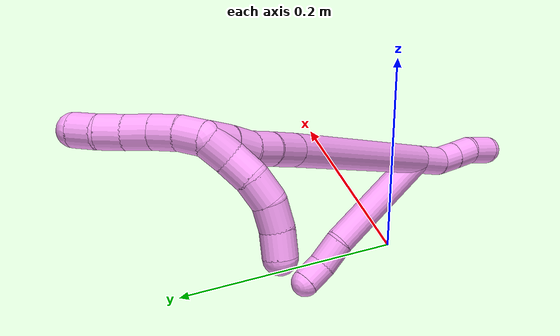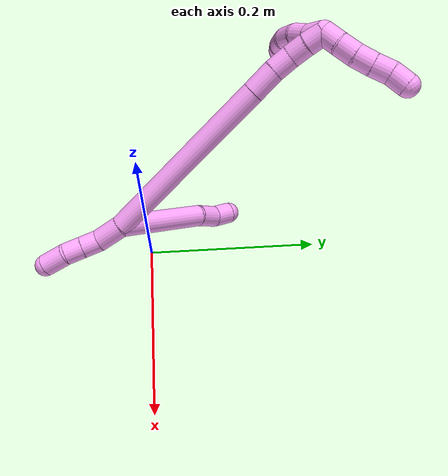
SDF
<sdf version="1.7">
 <world name="default">
  <model name="4">
   <static>0</static>
   <link name="4">
    <collision name="collision-cylinder-e_1_2_8">
     <pose>0.022114 -0.019424 -0.042139 2.70968 0.444755 1.60104</pose>
     <geometry><cylinder><radius>0.0125</radius><length>0.102801</length></cylinder></geometry>
     <surface>
      <friction><ode><mu>1.16</mu><mu2>1.16</mu2><slip1>0</slip1><slip2>0</slip2></ode></friction>
      <contact><ode><kp>1e+06</kp><kd>1</kd><max_vel>0</max_vel><min_depth>0.001</min_depth></ode></contact>
     </surface>
    </collision>
    <visual name="visual-cylinder-e_1_2_8">
     <pose>0.022114 -0.019424 -0.042139 2.70968 0.444755 1.60104</pose>
     <geometry><cylinder><radius>0.0125</radius><length>0.102801</length></cylinder></geometry>
     <material><ambient>1 0.65098 0.996078 1</ambient></material>
    </visual>
    <collision name="collision-cylinder-e_2_8_9">
     <pose>0.050842 -0.045771 -0.092906 2.46536 0.53883 1.33143</pose>
     <geometry><cylinder><radius>0.0125</radius><length>0.025776</length></cylinder></geometry>
     <surface>
      <friction><ode><mu>1.16</mu><mu2>1.16</mu2><slip1>0</slip1><slip2>0</slip2></ode></friction>
      <contact><ode><kp>1e+06</kp><kd>1</kd><max_vel>0</max_vel><min_depth>0.001</min_depth></ode></contact>
     </surface>
    </collision>
    <visual name="visual-cylinder-e_2_8_9">
     <pose>0.050842 -0.045771 -0.092906 2.46536 0.53883 1.33143</pose>
     <geometry><cylinder><radius>0.0125</radius><length>0.025776</length></cylinder></geometry>
     <material><ambient>1 0.65098 0.996078 1</ambient></material>
    </visual>
    <collision name="collision-cylinder-e_3_9_6">
     <pose>0.061249 -0.05618 -0.110924 2.78609 0.362025 1.58936</pose>
     <geometry><cylinder><radius>0.0125</radius><length>0.021423</length></cylinder></geometry>
     <surface>
      <friction><ode><mu>1.16</mu><mu2>1.16</mu2><slip1>0</slip1><slip2>0</slip2></ode></friction>
      <contact><ode><kp>1e+06</kp><kd>1</kd><max_vel>0</max_vel><min_depth>0.001</min_depth></ode></contact>
     </surface>
    </collision>
    <visual name="visual-cylinder-e_3_9_6">
     <pose>0.061249 -0.05618 -0.110924 2.78609 0.362025 1.58936</pose>
     <geometry><cylinder><radius>0.0125</radius><length>0.021423</length></cylinder></geometry>
     <material><ambient>1 0.65098 0.996078 1</ambient></material>
    </visual>
    <collision name="collision-cylinder-e_1_2_10">
     <pose>-1.8e-05 -0.006381 0.014503 0.41448 -0.001126 -0.000237</pose>
     <geometry><cylinder><radius>0.0125</radius><length>0.031688</length></cylinder></geometry>
     <surface>
      <friction><ode><mu>1.16</mu><mu2>1.16</mu2><slip1>0</slip1><slip2>0</slip2></ode></friction>
      <contact><ode><kp>1e+06</kp><kd>1</kd><max_vel>0</max_vel><min_depth>0.001</min_depth></ode></contact>
     </surface>
    </collision>
    <visual name="visual-cylinder-e_1_2_10">
     <pose>-1.8e-05 -0.006381 0.014503 0.41448 -0.001126 -0.000237</pose>
     <geometry><cylinder><radius>0.0125</radius><length>0.031688</length></cylinder></geometry>
     <material><ambient>1 0.65098 0.996078 1</ambient></material>
    </visual>
    <collision name="collision-cylinder-e_2_10_11">
     <pose>-0.002171 -0.014175 0.03874 0.144246 -0.213743 -0.015501</pose>
     <geometry><cylinder><radius>0.0125</radius><length>0.020132</length></cylinder></geometry>
     <surface>
      <friction><ode><mu>1.16</mu><mu2>1.16</mu2><slip1>0</slip1><slip2>0</slip2></ode></friction>
      <contact><ode><kp>1e+06</kp><kd>1</kd><max_vel>0</max_vel><min_depth>0.001</min_depth></ode></contact>
     </surface>
    </collision>
    <visual name="visual-cylinder-e_2_10_11">
     <pose>-0.002171 -0.014175 0.03874 0.144246 -0.213743 -0.015501</pose>
     <geometry><cylinder><radius>0.0125</radius><length>0.020132</length></cylinder></geometry>
     <material><ambient>1 0.65098 0.996078 1</ambient></material>
    </visual>
    <collision name="collision-cylinder-e_3_11_12">
     <pose>-0.00652 -0.01682 0.058597 0.12101 -0.213843 -0.013004</pose>
     <geometry><cylinder><radius>0.0125</radius><length>0.02087</length></cylinder></geometry>
     <surface>
      <friction><ode><mu>1.16</mu><mu2>1.16</mu2><slip1>0</slip1><slip2>0</slip2></ode></friction>
      <contact><ode><kp>1e+06</kp><kd>1</kd><max_vel>0</max_vel><min_depth>0.001</min_depth></ode></contact>
     </surface>
    </collision>
    <visual name="visual-cylinder-e_3_11_12">
     <pose>-0.00652 -0.01682 0.058597 0.12101 -0.213843 -0.013004</pose>
     <geometry><cylinder><radius>0.0125</radius><length>0.02087</length></cylinder></geometry>
     <material><ambient>1 0.65098 0.996078 1</ambient></material>
    </visual>
    <collision name="collision-cylinder-e_4_12_5">
     <pose>-0.009771 -0.02281 0.081477 0.357008 -0.075941 -0.013708</pose>
     <geometry><cylinder><radius>0.0125</radius><length>0.02731</length></cylinder></geometry>
     <surface>
      <friction><ode><mu>1.16</mu><mu2>1.16</mu2><slip1>0</slip1><slip2>0</slip2></ode></friction>
      <contact><ode><kp>1e+06</kp><kd>1</kd><max_vel>0</max_vel><min_depth>0.001</min_depth></ode></contact>
     </surface>
    </collision>
    <visual name="visual-cylinder-e_4_12_5">
     <pose>-0.009771 -0.02281 0.081477 0.357008 -0.075941 -0.013708</pose>
     <geometry><cylinder><radius>0.0125</radius><length>0.02731</length></cylinder></geometry>
     <material><ambient>1 0.65098 0.996078 1</ambient></material>
    </visual>
    <collision name="collision-cylinder-e_1_2_13">
     <pose>-0.019712 0.036778 -0.094648 -2.77097 -0.191746 0.947996</pose>
     <geometry><cylinder><radius>0.0125</radius><length>0.206875</length></cylinder></geometry>
     <surface>
      <friction><ode><mu>1.16</mu><mu2>1.16</mu2><slip1>0</slip1><slip2>0</slip2></ode></friction>
      <contact><ode><kp>1e+06</kp><kd>1</kd><max_vel>0</max_vel><min_depth>0.001</min_depth></ode></contact>
     </surface>
    </collision>
    <visual name="visual-cylinder-e_1_2_13">
     <pose>-0.019712 0.036778 -0.094648 -2.77097 -0.191746 0.947996</pose>
     <geometry><cylinder><radius>0.0125</radius><length>0.206875</length></cylinder></geometry>
     <material><ambient>1 0.65098 0.996078 1</ambient></material>
    </visual>
    <collision name="collision-cylinder-e_2_13_14">
     <pose>-0.042526 0.078626 -0.2033 -2.79421 -0.205239 1.0615</pose>
     <geometry><cylinder><radius>0.0125</radius><length>0.030427</length></cylinder></geometry>
     <surface>
      <friction><ode><mu>1.16</mu><mu2>1.16</mu2><slip1>0</slip1><slip2>0</slip2></ode></friction>
      <contact><ode><kp>1e+06</kp><kd>1</kd><max_vel>0</max_vel><min_depth>0.001</min_depth></ode></contact>
     </surface>
    </collision>
    <visual name="visual-cylinder-e_2_13_14">
     <pose>-0.042526 0.078626 -0.2033 -2.79421 -0.205239 1.0615</pose>
     <geometry><cylinder><radius>0.0125</radius><length>0.030427</length></cylinder></geometry>
     <material><ambient>1 0.65098 0.996078 1</ambient></material>
    </visual>
    <collision name="collision-cylinder-e_3_14_15">
     <pose>-0.046673 0.087563 -0.227788 -2.78826 -0.093468 0.512415</pose>
     <geometry><cylinder><radius>0.0125</radius><length>0.022446</length></cylinder></geometry>
     <surface>
      <friction><ode><mu>1.16</mu><mu2>1.16</mu2><slip1>0</slip1><slip2>0</slip2></ode></friction>
      <contact><ode><kp>1e+06</kp><kd>1</kd><max_vel>0</max_vel><min_depth>0.001</min_depth></ode></contact>
     </surface>
    </collision>
    <visual name="visual-cylinder-e_3_14_15">
     <pose>-0.046673 0.087563 -0.227788 -2.78826 -0.093468 0.512415</pose>
     <geometry><cylinder><radius>0.0125</radius><length>0.022446</length></cylinder></geometry>
     <material><ambient>1 0.65098 0.996078 1</ambient></material>
    </visual>
    <collision name="collision-cylinder-e_4_15_16">
     <pose>-0.048086 0.096727 -0.246849 -2.58829 -0.036196 0.12732</pose>
     <geometry><cylinder><radius>0.0125</radius><length>0.020176</length></cylinder></geometry>
     <surface>
      <friction><ode><mu>1.16</mu><mu2>1.16</mu2><slip1>0</slip1><slip2>0</slip2></ode></friction>
      <contact><ode><kp>1e+06</kp><kd>1</kd><max_vel>0</max_vel><min_depth>0.001</min_depth></ode></contact>
     </surface>
    </collision>
    <visual name="visual-cylinder-e_4_15_16">
     <pose>-0.048086 0.096727 -0.246849 -2.58829 -0.036196 0.12732</pose>
     <geometry><cylinder><radius>0.0125</radius><length>0.020176</length></cylinder></geometry>
     <material><ambient>1 0.65098 0.996078 1</ambient></material>
    </visual>
    <collision name="collision-cylinder-e_5_16_1">
     <pose>-0.04843 0.10673 -0.264293 -2.6537 0.002051 -0.008239</pose>
     <geometry><cylinder><radius>0.0125</radius><length>0.020076</length></cylinder></geometry>
     <surface>
      <friction><ode><mu>1.16</mu><mu2>1.16</mu2><slip1>0</slip1><slip2>0</slip2></ode></friction>
      <contact><ode><kp>1e+06</kp><kd>1</kd><max_vel>0</max_vel><min_depth>0.001</min_depth></ode></contact>
     </surface>
    </collision>
    <visual name="visual-cylinder-e_5_16_1">
     <pose>-0.04843 0.10673 -0.264293 -2.6537 0.002051 -0.008239</pose>
     <geometry><cylinder><radius>0.0125</radius><length>0.020076</length></cylinder></geometry>
     <material><ambient>1 0.65098 0.996078 1</ambient></material>
    </visual>
    <collision name="collision-cylinder-e_1_1_17">
     <pose>-0.039491 0.115545 -0.275045 -2.001 1.10159 -1.5275</pose>
     <geometry><cylinder><radius>0.0125</radius><length>0.02</length></cylinder></geometry>
     <surface>
      <friction><ode><mu>1.16</mu><mu2>1.16</mu2><slip1>0</slip1><slip2>0</slip2></ode></friction>
      <contact><ode><kp>1e+06</kp><kd>1</kd><max_vel>0</max_vel><min_depth>0.001</min_depth></ode></contact>
     </surface>
    </collision>
    <visual name="visual-cylinder-e_1_1_17">
     <pose>-0.039491 0.115545 -0.275045 -2.001 1.10159 -1.5275</pose>
     <geometry><cylinder><radius>0.0125</radius><length>0.02</length></cylinder></geometry>
     <material><ambient>1 0.65098 0.996078 1</ambient></material>
    </visual>
    <collision name="collision-cylinder-e_2_17_18">
     <pose>-0.021408 0.122517 -0.279732 -2.34559 1.15881 -1.99934</pose>
     <geometry><cylinder><radius>0.0125</radius><length>0.02</length></cylinder></geometry>
     <surface>
      <friction><ode><mu>1.16</mu><mu2>1.16</mu2><slip1>0</slip1><slip2>0</slip2></ode></friction>
      <contact><ode><kp>1e+06</kp><kd>1</kd><max_vel>0</max_vel><min_depth>0.001</min_depth></ode></contact>
     </surface>
    </collision>
    <visual name="visual-cylinder-e_2_17_18">
     <pose>-0.021408 0.122517 -0.279732 -2.34559 1.15881 -1.99934</pose>
     <geometry><cylinder><radius>0.0125</radius><length>0.02</length></cylinder></geometry>
     <material><ambient>1 0.65098 0.996078 1</ambient></material>
    </visual>
    <collision name="collision-cylinder-e_3_18_19">
     <pose>-0.003449 0.128072 -0.286455 -2.53959 1.07495 -2.1812</pose>
     <geometry><cylinder><radius>0.0125</radius><length>0.02</length></cylinder></geometry>
     <surface>
      <friction><ode><mu>1.16</mu><mu2>1.16</mu2><slip1>0</slip1><slip2>0</slip2></ode></friction>
      <contact><ode><kp>1e+06</kp><kd>1</kd><max_vel>0</max_vel><min_depth>0.001</min_depth></ode></contact>
     </surface>
    </collision>
    <visual name="visual-cylinder-e_3_18_19">
     <pose>-0.003449 0.128072 -0.286455 -2.53959 1.07495 -2.1812</pose>
     <geometry><cylinder><radius>0.0125</radius><length>0.02</length></cylinder></geometry>
     <material><ambient>1 0.65098 0.996078 1</ambient></material>
    </visual>
    <collision name="collision-cylinder-e_4_19_20">
     <pose>0.013816 0.133874 -0.294692 -2.51759 1.01013 -2.08541</pose>
     <geometry><cylinder><radius>0.0125</radius><length>0.02</length></cylinder></geometry>
     <surface>
      <friction><ode><mu>1.16</mu><mu2>1.16</mu2><slip1>0</slip1><slip2>0</slip2></ode></friction>
      <contact><ode><kp>1e+06</kp><kd>1</kd><max_vel>0</max_vel><min_depth>0.001</min_depth></ode></contact>
     </surface>
    </collision>
    <visual name="visual-cylinder-e_4_19_20">
     <pose>0.013816 0.133874 -0.294692 -2.51759 1.01013 -2.08541</pose>
     <geometry><cylinder><radius>0.0125</radius><length>0.02</length></cylinder></geometry>
     <material><ambient>1 0.65098 0.996078 1</ambient></material>
    </visual>
    <collision name="collision-cylinder-e_5_20_4">
     <pose>0.03156 0.139989 -0.301225 -2.20595 1.18776 -1.85679</pose>
     <geometry><cylinder><radius>0.0125</radius><length>0.02</length></cylinder></geometry>
     <surface>
      <friction><ode><mu>1.16</mu><mu2>1.16</mu2><slip1>0</slip1><slip2>0</slip2></ode></friction>
      <contact><ode><kp>1e+06</kp><kd>1</kd><max_vel>0</max_vel><min_depth>0.001</min_depth></ode></contact>
     </surface>
    </collision>
    <visual name="visual-cylinder-e_5_20_4">
     <pose>0.03156 0.139989 -0.301225 -2.20595 1.18776 -1.85679</pose>
     <geometry><cylinder><radius>0.0125</radius><length>0.02</length></cylinder></geometry>
     <material><ambient>1 0.65098 0.996078 1</ambient></material>
    </visual>
    <collision name="collision-cylinder-e_1_1_21">
     <pose>-0.051478 0.102807 -0.269142 1.13502 -0.31182 -0.199734</pose>
     <geometry><cylinder><radius>0.0125</radius><length>0.02</length></cylinder></geometry>
     <surface>
      <friction><ode><mu>1.16</mu><mu2>1.16</mu2><slip1>0</slip1><slip2>0</slip2></ode></friction>
      <contact><ode><kp>1e+06</kp><kd>1</kd><max_vel>0</max_vel><min_depth>0.001</min_depth></ode></contact>
     </surface>
    </collision>
    <visual name="visual-cylinder-e_1_1_21">
     <pose>-0.051478 0.102807 -0.269142 1.13502 -0.31182 -0.199734</pose>
     <geometry><cylinder><radius>0.0125</radius><length>0.02</length></cylinder></geometry>
     <material><ambient>1 0.65098 0.996078 1</ambient></material>
    </visual>
    <collision name="collision-cylinder-e_2_21_22">
     <pose>-0.059083 0.085495 -0.263125 1.34454 -0.470911 -0.377365</pose>
     <geometry><cylinder><radius>0.0125</radius><length>0.02</length></cylinder></geometry>
     <surface>
      <friction><ode><mu>1.16</mu><mu2>1.16</mu2><slip1>0</slip1><slip2>0</slip2></ode></friction>
      <contact><ode><kp>1e+06</kp><kd>1</kd><max_vel>0</max_vel><min_depth>0.001</min_depth></ode></contact>
     </surface>
    </collision>
    <visual name="visual-cylinder-e_2_21_22">
     <pose>-0.059083 0.085495 -0.263125 1.34454 -0.470911 -0.377365</pose>
     <geometry><cylinder><radius>0.0125</radius><length>0.02</length></cylinder></geometry>
     <material><ambient>1 0.65098 0.996078 1</ambient></material>
    </visual>
    <collision name="collision-cylinder-e_3_22_23">
     <pose>-0.065387 0.067176 -0.259111 1.36458 -0.177707 -0.144508</pose>
     <geometry><cylinder><radius>0.0125</radius><length>0.02</length></cylinder></geometry>
     <surface>
      <friction><ode><mu>1.16</mu><mu2>1.16</mu2><slip1>0</slip1><slip2>0</slip2></ode></friction>
      <contact><ode><kp>1e+06</kp><kd>1</kd><max_vel>0</max_vel><min_depth>0.001</min_depth></ode></contact>
     </surface>
    </collision>
    <visual name="visual-cylinder-e_3_22_23">
     <pose>-0.065387 0.067176 -0.259111 1.36458 -0.177707 -0.144508</pose>
     <geometry><cylinder><radius>0.0125</radius><length>0.02</length></cylinder></geometry>
     <material><ambient>1 0.65098 0.996078 1</ambient></material>
    </visual>
    <collision name="collision-cylinder-e_4_23_24">
     <pose>-0.066074 0.047602 -0.256937 1.55491 0.108354 0.10665</pose>
     <geometry><cylinder><radius>0.0125</radius><length>0.02</length></cylinder></geometry>
     <surface>
      <friction><ode><mu>1.16</mu><mu2>1.16</mu2><slip1>0</slip1><slip2>0</slip2></ode></friction>
      <contact><ode><kp>1e+06</kp><kd>1</kd><max_vel>0</max_vel><min_depth>0.001</min_depth></ode></contact>
     </surface>
    </collision>
    <visual name="visual-cylinder-e_4_23_24">
     <pose>-0.066074 0.047602 -0.256937 1.55491 0.108354 0.10665</pose>
     <geometry><cylinder><radius>0.0125</radius><length>0.02</length></cylinder></geometry>
     <material><ambient>1 0.65098 0.996078 1</ambient></material>
    </visual>
    <collision name="collision-cylinder-e_5_24_3">
     <pose>-0.063478 0.027941 -0.258569 1.7528 0.152043 0.182424</pose>
     <geometry><cylinder><radius>0.0125</radius><length>0.02</length></cylinder></geometry>
     <surface>
      <friction><ode><mu>1.16</mu><mu2>1.16</mu2><slip1>0</slip1><slip2>0</slip2></ode></friction>
      <contact><ode><kp>1e+06</kp><kd>1</kd><max_vel>0</max_vel><min_depth>0.001</min_depth></ode></contact>
     </surface>
    </collision>
    <visual name="visual-cylinder-e_5_24_3">
     <pose>-0.063478 0.027941 -0.258569 1.7528 0.152043 0.182424</pose>
     <geometry><cylinder><radius>0.0125</radius><length>0.02</length></cylinder></geometry>
     <material><ambient>1 0.65098 0.996078 1</ambient></material>
    </visual>
    <collision name="collision-sphere-3">
     <pose>-0.061963 0.018219 -0.260358 0 -0 0</pose>
     <geometry><sphere><radius>0.0125</radius></sphere></geometry>
     <surface>
      <friction><ode><mu>1.16</mu><mu2>1.16</mu2><slip1>0</slip1><slip2>0</slip2></ode></friction>
      <contact><ode><kp>1e+06</kp><kd>1</kd><max_vel>0</max_vel><min_depth>0.001</min_depth></ode></contact>
     </surface>
    </collision>
    <visual name="visual-sphere-3">
     <pose>-0.061963 0.018219 -0.260358 0 -0 0</pose>
     <geometry><sphere><radius>0.0125</radius></sphere></geometry>
     <material><ambient>1 0.65098 0.996078 1</ambient></material>
    </visual>
    <collision name="collision-sphere-24">
     <pose>-0.064992 0.037662 -0.25678 0 -0 0</pose>
     <geometry><sphere><radius>0.0125</radius></sphere></geometry>
     <surface>
      <friction><ode><mu>1.16</mu><mu2>1.16</mu2><slip1>0</slip1><slip2>0</slip2></ode></friction>
      <contact><ode><kp>1e+06</kp><kd>1</kd><max_vel>0</max_vel><min_depth>0.001</min_depth></ode></contact>
     </surface>
    </collision>
    <visual name="visual-sphere-24">
     <pose>-0.064992 0.037662 -0.25678 0 -0 0</pose>
     <geometry><sphere><radius>0.0125</radius></sphere></geometry>
     <material><ambient>1 0.65098 0.996078 1</ambient></material>
    </visual>
    <collision name="collision-sphere-23">
     <pose>-0.067155 0.057542 -0.257095 0 -0 0</pose>
     <geometry><sphere><radius>0.0125</radius></sphere></geometry>
     <surface>
      <friction><ode><mu>1.16</mu><mu2>1.16</mu2><slip1>0</slip1><slip2>0</slip2></ode></friction>
      <contact><ode><kp>1e+06</kp><kd>1</kd><max_vel>0</max_vel><min_depth>0.001</min_depth></ode></contact>
     </surface>
    </collision>
    <visual name="visual-sphere-23">
     <pose>-0.067155 0.057542 -0.257095 0 -0 0</pose>
     <geometry><sphere><radius>0.0125</radius></sphere></geometry>
     <material><ambient>1 0.65098 0.996078 1</ambient></material>
    </visual>
    <collision name="collision-sphere-22">
     <pose>-0.06362 0.07681 -0.261126 0 -0 0</pose>
     <geometry><sphere><radius>0.0125</radius></sphere></geometry>
     <surface>
      <friction><ode><mu>1.16</mu><mu2>1.16</mu2><slip1>0</slip1><slip2>0</slip2></ode></friction>
      <contact><ode><kp>1e+06</kp><kd>1</kd><max_vel>0</max_vel><min_depth>0.001</min_depth></ode></contact>
     </surface>
    </collision>
    <visual name="visual-sphere-22">
     <pose>-0.06362 0.07681 -0.261126 0 -0 0</pose>
     <geometry><sphere><radius>0.0125</radius></sphere></geometry>
     <material><ambient>1 0.65098 0.996078 1</ambient></material>
    </visual>
    <collision name="collision-sphere-21">
     <pose>-0.054546 0.094179 -0.265124 0 -0 0</pose>
     <geometry><sphere><radius>0.0125</radius></sphere></geometry>
     <surface>
      <friction><ode><mu>1.16</mu><mu2>1.16</mu2><slip1>0</slip1><slip2>0</slip2></ode></friction>
      <contact><ode><kp>1e+06</kp><kd>1</kd><max_vel>0</max_vel><min_depth>0.001</min_depth></ode></contact>
     </surface>
    </collision>
    <visual name="visual-sphere-21">
     <pose>-0.054546 0.094179 -0.265124 0 -0 0</pose>
     <geometry><sphere><radius>0.0125</radius></sphere></geometry>
     <material><ambient>1 0.65098 0.996078 1</ambient></material>
    </visual>
    <collision name="collision-sphere-4">
     <pose>0.040835 0.142998 -0.303442 0 -0 0</pose>
     <geometry><sphere><radius>0.0125</radius></sphere></geometry>
     <surface>
      <friction><ode><mu>1.16</mu><mu2>1.16</mu2><slip1>0</slip1><slip2>0</slip2></ode></friction>
      <contact><ode><kp>1e+06</kp><kd>1</kd><max_vel>0</max_vel><min_depth>0.001</min_depth></ode></contact>
     </surface>
    </collision>
    <visual name="visual-sphere-4">
     <pose>0.040835 0.142998 -0.303442 0 -0 0</pose>
     <geometry><sphere><radius>0.0125</radius></sphere></geometry>
     <material><ambient>1 0.65098 0.996078 1</ambient></material>
    </visual>
    <collision name="collision-sphere-20">
     <pose>0.022285 0.13698 -0.299007 0 -0 0</pose>
     <geometry><sphere><radius>0.0125</radius></sphere></geometry>
     <surface>
      <friction><ode><mu>1.16</mu><mu2>1.16</mu2><slip1>0</slip1><slip2>0</slip2></ode></friction>
      <contact><ode><kp>1e+06</kp><kd>1</kd><max_vel>0</max_vel><min_depth>0.001</min_depth></ode></contact>
     </surface>
    </collision>
    <visual name="visual-sphere-20">
     <pose>0.022285 0.13698 -0.299007 0 -0 0</pose>
     <geometry><sphere><radius>0.0125</radius></sphere></geometry>
     <material><ambient>1 0.65098 0.996078 1</ambient></material>
    </visual>
    <collision name="collision-sphere-11">
     <pose>-0.004306 -0.015589 0.048474 0 -0 0</pose>
     <geometry><sphere><radius>0.0125</radius></sphere></geometry>
     <surface>
      <friction><ode><mu>1.16</mu><mu2>1.16</mu2><slip1>0</slip1><slip2>0</slip2></ode></friction>
      <contact><ode><kp>1e+06</kp><kd>1</kd><max_vel>0</max_vel><min_depth>0.001</min_depth></ode></contact>
     </surface>
    </collision>
    <visual name="visual-sphere-11">
     <pose>-0.004306 -0.015589 0.048474 0 -0 0</pose>
     <geometry><sphere><radius>0.0125</radius></sphere></geometry>
     <material><ambient>1 0.65098 0.996078 1</ambient></material>
    </visual>
    <collision name="collision-sphere-10">
     <pose>-3.6e-05 -0.012761 0.029005 0 -0 0</pose>
     <geometry><sphere><radius>0.0125</radius></sphere></geometry>
     <surface>
      <friction><ode><mu>1.16</mu><mu2>1.16</mu2><slip1>0</slip1><slip2>0</slip2></ode></friction>
      <contact><ode><kp>1e+06</kp><kd>1</kd><max_vel>0</max_vel><min_depth>0.001</min_depth></ode></contact>
     </surface>
    </collision>
    <visual name="visual-sphere-10">
     <pose>-3.6e-05 -0.012761 0.029005 0 -0 0</pose>
     <geometry><sphere><radius>0.0125</radius></sphere></geometry>
     <material><ambient>1 0.65098 0.996078 1</ambient></material>
    </visual>
    <collision name="collision-sphere-6">
     <pose>0.065043 -0.059667 -0.120315 0 -0 0</pose>
     <geometry><sphere><radius>0.0125</radius></sphere></geometry>
     <surface>
      <friction><ode><mu>1.16</mu><mu2>1.16</mu2><slip1>0</slip1><slip2>0</slip2></ode></friction>
      <contact><ode><kp>1e+06</kp><kd>1</kd><max_vel>0</max_vel><min_depth>0.001</min_depth></ode></contact>
     </surface>
    </collision>
    <visual name="visual-sphere-6">
     <pose>0.065043 -0.059667 -0.120315 0 -0 0</pose>
     <geometry><sphere><radius>0.0125</radius></sphere></geometry>
     <material><ambient>1 0.65098 0.996078 1</ambient></material>
    </visual>
    <collision name="collision-sphere-9">
     <pose>0.057455 -0.052694 -0.101533 0 -0 0</pose>
     <geometry><sphere><radius>0.0125</radius></sphere></geometry>
     <surface>
      <friction><ode><mu>1.16</mu><mu2>1.16</mu2><slip1>0</slip1><slip2>0</slip2></ode></friction>
      <contact><ode><kp>1e+06</kp><kd>1</kd><max_vel>0</max_vel><min_depth>0.001</min_depth></ode></contact>
     </surface>
    </collision>
    <visual name="visual-sphere-9">
     <pose>0.057455 -0.052694 -0.101533 0 -0 0</pose>
     <geometry><sphere><radius>0.0125</radius></sphere></geometry>
     <material><ambient>1 0.65098 0.996078 1</ambient></material>
    </visual>
    <collision name="collision-sphere-2">
     <geometry><sphere><radius>0.0125</radius></sphere></geometry>
     <surface>
      <friction><ode><mu>1.16</mu><mu2>1.16</mu2><slip1>0</slip1><slip2>0</slip2></ode></friction>
      <contact><ode><kp>1e+06</kp><kd>1</kd><max_vel>0</max_vel><min_depth>0.001</min_depth></ode></contact>
     </surface>
    </collision>
    <visual name="visual-sphere-2">
     <geometry><sphere><radius>0.0125</radius></sphere></geometry>
     <material><ambient>1 0.65098 0.996078 1</ambient></material>
    </visual>
    <collision name="collision-sphere-19">
     <pose>0.005347 0.130767 -0.290376 0 -0 0</pose>
     <geometry><sphere><radius>0.0125</radius></sphere></geometry>
     <surface>
      <friction><ode><mu>1.16</mu><mu2>1.16</mu2><slip1>0</slip1><slip2>0</slip2></ode></friction>
      <contact><ode><kp>1e+06</kp><kd>1</kd><max_vel>0</max_vel><min_depth>0.001</min_depth></ode></contact>
     </surface>
    </collision>
    <visual name="visual-sphere-19">
     <pose>0.005347 0.130767 -0.290376 0 -0 0</pose>
     <geometry><sphere><radius>0.0125</radius></sphere></geometry>
     <material><ambient>1 0.65098 0.996078 1</ambient></material>
    </visual>
    <collision name="collision-sphere-8">
     <pose>0.044229 -0.038847 -0.084278 0 -0 0</pose>
     <geometry><sphere><radius>0.0125</radius></sphere></geometry>
     <surface>
      <friction><ode><mu>1.16</mu><mu2>1.16</mu2><slip1>0</slip1><slip2>0</slip2></ode></friction>
      <contact><ode><kp>1e+06</kp><kd>1</kd><max_vel>0</max_vel><min_depth>0.001</min_depth></ode></contact>
     </surface>
    </collision>
    <visual name="visual-sphere-8">
     <pose>0.044229 -0.038847 -0.084278 0 -0 0</pose>
     <geometry><sphere><radius>0.0125</radius></sphere></geometry>
     <material><ambient>1 0.65098 0.996078 1</ambient></material>
    </visual>
    <collision name="collision-sphere-12">
     <pose>-0.008735 -0.018051 0.06872 0 -0 0</pose>
     <geometry><sphere><radius>0.0125</radius></sphere></geometry>
     <surface>
      <friction><ode><mu>1.16</mu><mu2>1.16</mu2><slip1>0</slip1><slip2>0</slip2></ode></friction>
      <contact><ode><kp>1e+06</kp><kd>1</kd><max_vel>0</max_vel><min_depth>0.001</min_depth></ode></contact>
     </surface>
    </collision>
    <visual name="visual-sphere-12">
     <pose>-0.008735 -0.018051 0.06872 0 -0 0</pose>
     <geometry><sphere><radius>0.0125</radius></sphere></geometry>
     <material><ambient>1 0.65098 0.996078 1</ambient></material>
    </visual>
    <collision name="collision-sphere-5">
     <pose>-0.010807 -0.027568 0.094234 0 -0 0</pose>
     <geometry><sphere><radius>0.0125</radius></sphere></geometry>
     <surface>
      <friction><ode><mu>1.16</mu><mu2>1.16</mu2><slip1>0</slip1><slip2>0</slip2></ode></friction>
      <contact><ode><kp>1e+06</kp><kd>1</kd><max_vel>0</max_vel><min_depth>0.001</min_depth></ode></contact>
     </surface>
    </collision>
    <visual name="visual-sphere-5">
     <pose>-0.010807 -0.027568 0.094234 0 -0 0</pose>
     <geometry><sphere><radius>0.0125</radius></sphere></geometry>
     <material><ambient>1 0.65098 0.996078 1</ambient></material>
    </visual>
    <collision name="collision-sphere-13">
     <pose>-0.039425 0.073555 -0.189295 0 -0 0</pose>
     <geometry><sphere><radius>0.0125</radius></sphere></geometry>
     <surface>
      <friction><ode><mu>1.16</mu><mu2>1.16</mu2><slip1>0</slip1><slip2>0</slip2></ode></friction>
      <contact><ode><kp>1e+06</kp><kd>1</kd><max_vel>0</max_vel><min_depth>0.001</min_depth></ode></contact>
     </surface>
    </collision>
    <visual name="visual-sphere-13">
     <pose>-0.039425 0.073555 -0.189295 0 -0 0</pose>
     <geometry><sphere><radius>0.0125</radius></sphere></geometry>
     <material><ambient>1 0.65098 0.996078 1</ambient></material>
    </visual>
    <collision name="collision-sphere-14">
     <pose>-0.045626 0.083696 -0.217304 0 -0 0</pose>
     <geometry><sphere><radius>0.0125</radius></sphere></geometry>
     <surface>
      <friction><ode><mu>1.16</mu><mu2>1.16</mu2><slip1>0</slip1><slip2>0</slip2></ode></friction>
      <contact><ode><kp>1e+06</kp><kd>1</kd><max_vel>0</max_vel><min_depth>0.001</min_depth></ode></contact>
     </surface>
    </collision>
    <visual name="visual-sphere-14">
     <pose>-0.045626 0.083696 -0.217304 0 -0 0</pose>
     <geometry><sphere><radius>0.0125</radius></sphere></geometry>
     <material><ambient>1 0.65098 0.996078 1</ambient></material>
    </visual>
    <collision name="collision-sphere-15">
     <pose>-0.047721 0.091429 -0.238272 0 -0 0</pose>
     <geometry><sphere><radius>0.0125</radius></sphere></geometry>
     <surface>
      <friction><ode><mu>1.16</mu><mu2>1.16</mu2><slip1>0</slip1><slip2>0</slip2></ode></friction>
      <contact><ode><kp>1e+06</kp><kd>1</kd><max_vel>0</max_vel><min_depth>0.001</min_depth></ode></contact>
     </surface>
    </collision>
    <visual name="visual-sphere-15">
     <pose>-0.047721 0.091429 -0.238272 0 -0 0</pose>
     <geometry><sphere><radius>0.0125</radius></sphere></geometry>
     <material><ambient>1 0.65098 0.996078 1</ambient></material>
    </visual>
    <collision name="collision-sphere-16">
     <pose>-0.048451 0.102025 -0.255426 0 -0 0</pose>
     <geometry><sphere><radius>0.0125</radius></sphere></geometry>
     <surface>
      <friction><ode><mu>1.16</mu><mu2>1.16</mu2><slip1>0</slip1><slip2>0</slip2></ode></friction>
      <contact><ode><kp>1e+06</kp><kd>1</kd><max_vel>0</max_vel><min_depth>0.001</min_depth></ode></contact>
     </surface>
    </collision>
    <visual name="visual-sphere-16">
     <pose>-0.048451 0.102025 -0.255426 0 -0 0</pose>
     <geometry><sphere><radius>0.0125</radius></sphere></geometry>
     <material><ambient>1 0.65098 0.996078 1</ambient></material>
    </visual>
    <collision name="collision-sphere-1">
     <pose>-0.04841 0.111436 -0.273159 0 -0 0</pose>
     <geometry><sphere><radius>0.0125</radius></sphere></geometry>
     <surface>
      <friction><ode><mu>1.16</mu><mu2>1.16</mu2><slip1>0</slip1><slip2>0</slip2></ode></friction>
      <contact><ode><kp>1e+06</kp><kd>1</kd><max_vel>0</max_vel><min_depth>0.001</min_depth></ode></contact>
     </surface>
    </collision>
    <visual name="visual-sphere-1">
     <pose>-0.04841 0.111436 -0.273159 0 -0 0</pose>
     <geometry><sphere><radius>0.0125</radius></sphere></geometry>
     <material><ambient>1 0.65098 0.996078 1</ambient></material>
    </visual>
    <collision name="collision-sphere-18">
     <pose>-0.012245 0.125378 -0.282534 0 -0 0</pose>
     <geometry><sphere><radius>0.0125</radius></sphere></geometry>
     <surface>
      <friction><ode><mu>1.16</mu><mu2>1.16</mu2><slip1>0</slip1><slip2>0</slip2></ode></friction>
      <contact><ode><kp>1e+06</kp><kd>1</kd><max_vel>0</max_vel><min_depth>0.001</min_depth></ode></contact>
     </surface>
    </collision>
    <visual name="visual-sphere-18">
     <pose>-0.012245 0.125378 -0.282534 0 -0 0</pose>
     <geometry><sphere><radius>0.0125</radius></sphere></geometry>
     <material><ambient>1 0.65098 0.996078 1</ambient></material>
    </visual>
    <collision name="collision-sphere-17">
     <pose>-0.030571 0.119655 -0.276931 0 -0 0</pose>
     <geometry><sphere><radius>0.0125</radius></sphere></geometry>
     <surface>
      <friction><ode><mu>1.16</mu><mu2>1.16</mu2><slip1>0</slip1><slip2>0</slip2></ode></friction>
      <contact><ode><kp>1e+06</kp><kd>1</kd><max_vel>0</max_vel><min_depth>0.001</min_depth></ode></contact>
     </surface>
    </collision>
    <visual name="visual-sphere-17">
     <pose>-0.030571 0.119655 -0.276931 0 -0 0</pose>
     <geometry><sphere><radius>0.0125</radius></sphere></geometry>
     <material><ambient>1 0.65098 0.996078 1</ambient></material>
    </visual>
    <inertial>
     <pose>-0.01387 0.039519 -0.133949 0 -0 0</pose>
     <mass>0.75</mass>
     <inertia>
      <ixx>0.001137</ixx>
      <ixy>0</ixy>
      <ixz>0</ixz>
      <iyy>0.000349</iyy>
      <iyz>0</iyz>
      <izz>-0.000152</izz>
     </inertia>
    </inertial>
   </link>
   <pose>0.007153 -0.02739 0.086134 1.73188 0.521201 0.642931</pose>
  </model>
 </world>
</sdf>
